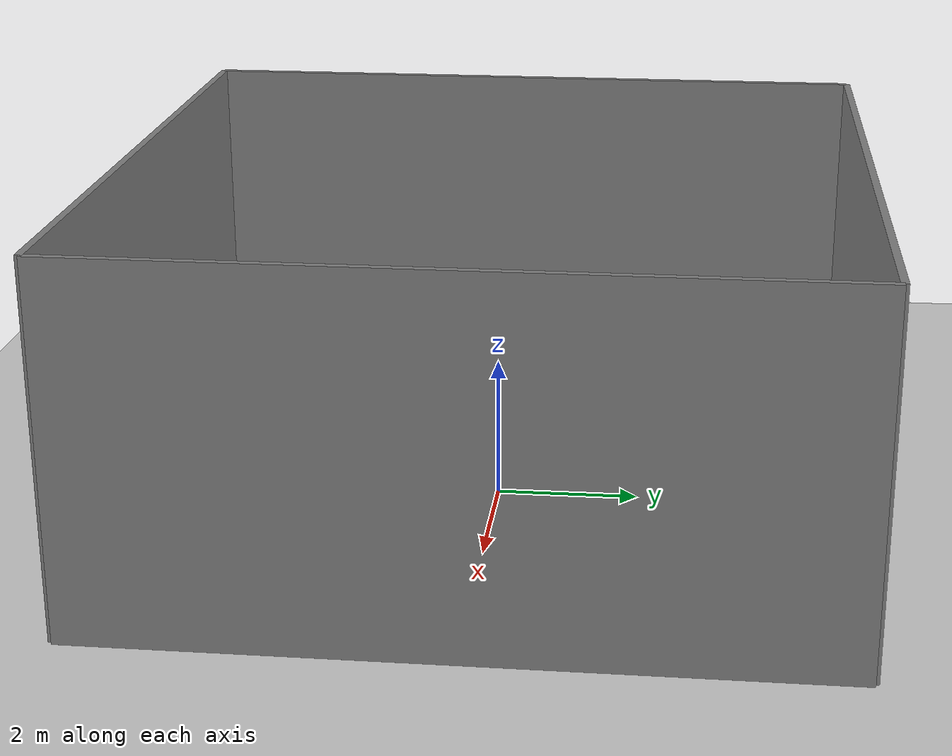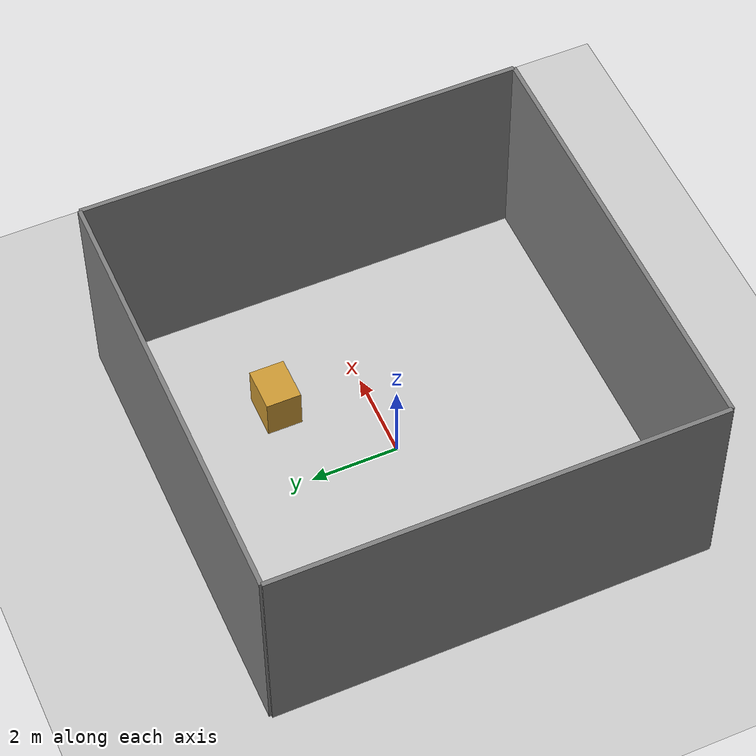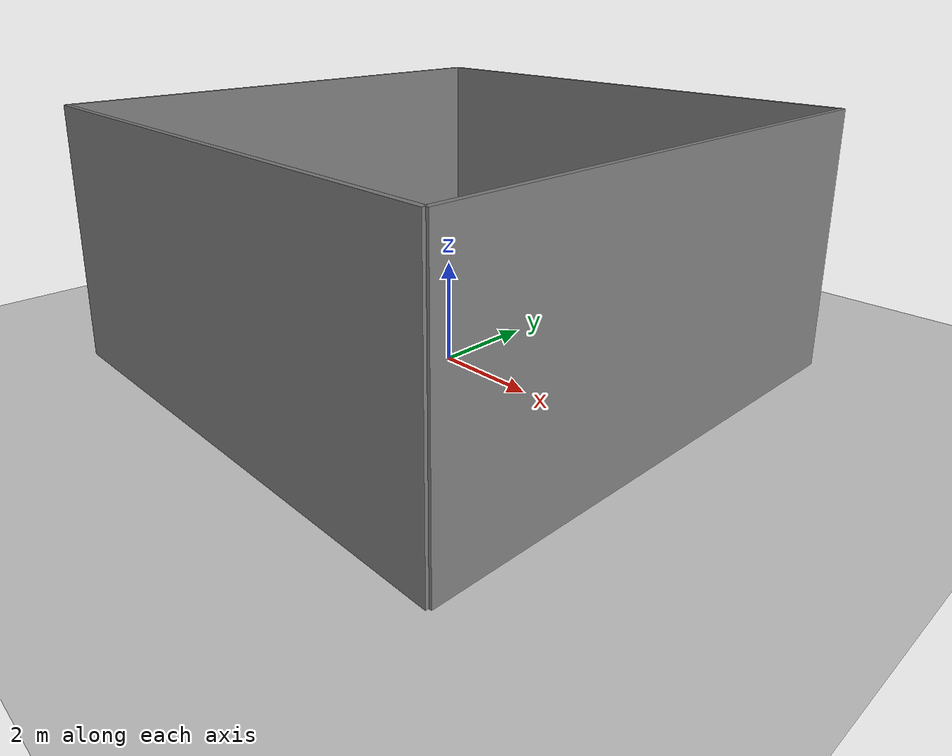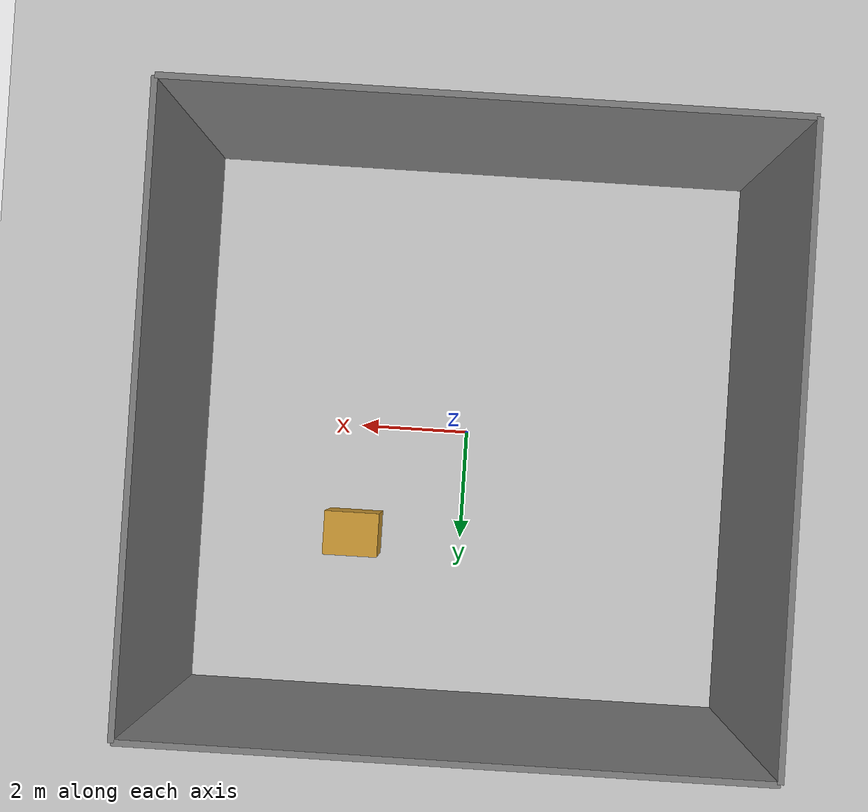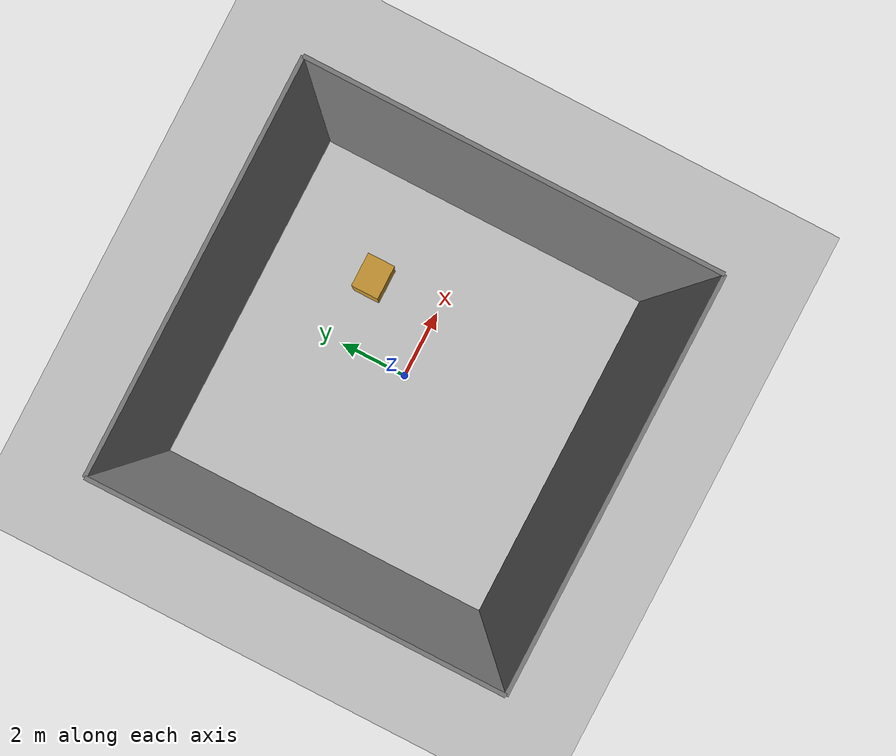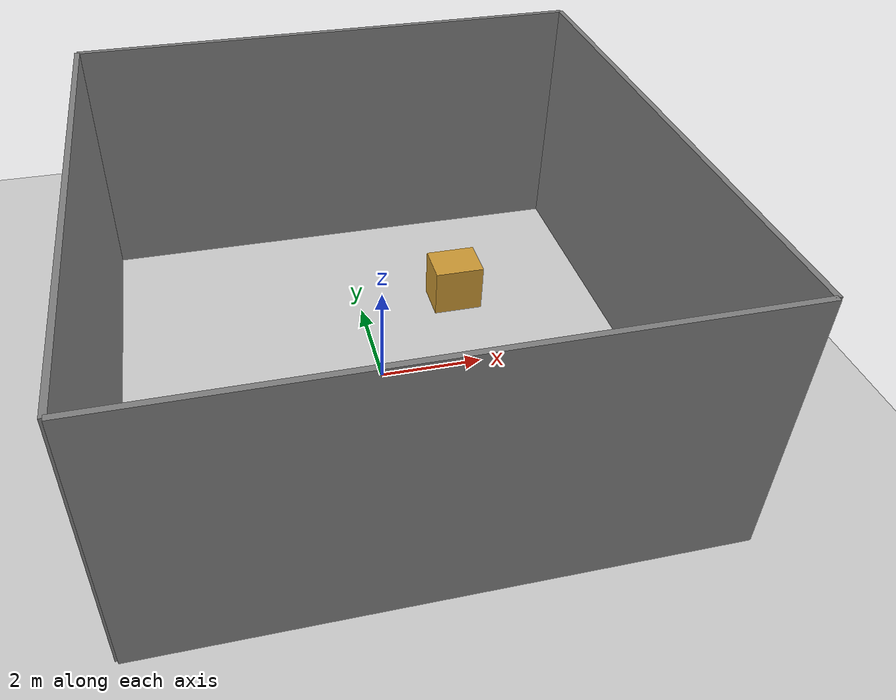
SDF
<?xml version="1.0" ?>
<sdf version="1.7">
  <world name="simple_room">
    <!-- Include the default outdoor world with sun -->
    <include>
      <uri>model://sun</uri>
    </include>

    <!-- Ground plane -->
    <include>
      <uri>model://ground_plane</uri>
    </include>

    <!-- Add a simple room with walls -->
    <model name="room_wall_1">
      <pose>-5 0 2.5 0 0 0</pose>
      <link name="link">
        <collision name="collision">
          <geometry>
            <box>
              <size>0.1 10 5</size>
            </box>
          </geometry>
        </collision>
        <visual name="visual">
          <geometry>
            <box>
              <size>0.1 10 5</size>
            </box>
          </geometry>
          <material>
            <ambient>0.5 0.5 0.5 1</ambient>
            <diffuse>0.5 0.5 0.5 1</diffuse>
          </material>
        </visual>
        <inertial>
          <mass>1</mass>
          <inertia>
            <ixx>1</ixx>
            <ixy>0</ixy>
            <ixz>0</ixz>
            <iyy>1</iyy>
            <iyz>0</iyz>
            <izz>1</izz>
          </inertia>
        </inertial>
      </link>
    </model>

    <model name="room_wall_2">
      <pose>5 0 2.5 0 0 0</pose>
      <link name="link">
        <collision name="collision">
          <geometry>
            <box>
              <size>0.1 10 5</size>
            </box>
          </geometry>
        </collision>
        <visual name="visual">
          <geometry>
            <box>
              <size>0.1 10 5</size>
            </box>
          </geometry>
          <material>
            <ambient>0.5 0.5 0.5 1</ambient>
            <diffuse>0.5 0.5 0.5 1</diffuse>
          </material>
        </visual>
        <inertial>
          <mass>1</mass>
          <inertia>
            <ixx>1</ixx>
            <ixy>0</ixy>
            <ixz>0</ixz>
            <iyy>1</iyy>
            <iyz>0</iyz>
            <izz>1</izz>
          </inertia>
        </inertial>
      </link>
    </model>

    <model name="room_wall_3">
      <pose>0 -5 2.5 0 0 1.57</pose>
      <link name="link">
        <collision name="collision">
          <geometry>
            <box>
              <size>0.1 10 5</size>
            </box>
          </geometry>
        </collision>
        <visual name="visual">
          <geometry>
            <box>
              <size>0.1 10 5</size>
            </box>
          </geometry>
          <material>
            <ambient>0.5 0.5 0.5 1</ambient>
            <diffuse>0.5 0.5 0.5 1</diffuse>
          </material>
        </visual>
        <inertial>
          <mass>1</mass>
          <inertia>
            <ixx>1</ixx>
            <ixy>0</ixy>
            <ixz>0</ixz>
            <iyy>1</iyy>
            <iyz>0</iyz>
            <izz>1</izz>
          </inertia>
        </inertial>
      </link>
    </model>

    <model name="room_wall_4">
      <pose>0 5 2.5 0 0 1.57</pose>
      <link name="link">
        <collision name="collision">
          <geometry>
            <box>
              <size>0.1 10 5</size>
            </box>
          </geometry>
        </collision>
        <visual name="visual">
          <geometry>
            <box>
              <size>0.1 10 5</size>
            </box>
          </geometry>
          <material>
            <ambient>0.5 0.5 0.5 1</ambient>
            <diffuse>0.5 0.5 0.5 1</diffuse>
          </material>
        </visual>
        <inertial>
          <mass>1</mass>
          <inertia>
            <ixx>1</ixx>
            <ixy>0</ixy>
            <ixz>0</ixz>
            <iyy>1</iyy>
            <iyz>0</iyz>
            <izz>1</izz>
          </inertia>
        </inertial>
      </link>
    </model>

    <!-- Add a simple table for the robot to interact with -->
    <model name="table">
      <pose>2 2 0.5 0 0 0</pose>
      <link name="link">
        <collision name="collision">
          <geometry>
            <box>
              <size>1 0.8 1</size>
            </box>
          </geometry>
        </collision>
        <visual name="visual">
          <geometry>
            <box>
              <size>1 0.8 1</size>
            </box>
          </geometry>
          <material>
            <ambient>0.8 0.6 0.2 1</ambient>
            <diffuse>0.8 0.6 0.2 1</diffuse>
          </material>
        </visual>
        <inertial>
          <mass>10</mass>
          <inertia>
            <ixx>1</ixx>
            <ixy>0</ixy>
            <ixz>0</ixz>
            <iyy>1</iyy>
            <iyz>0</iyz>
            <izz>1</izz>
          </inertia>
        </inertial>
      </link>
    </model>

    <!-- Physics engine configuration -->
    <physics name="1ms" type="ode">
      <max_step_size>0.001</max_step_size>
      <real_time_factor>1</real_time_factor>
      <real_time_update_rate>1000</real_time_update_rate>
    </physics>
  </world>
</sdf>
